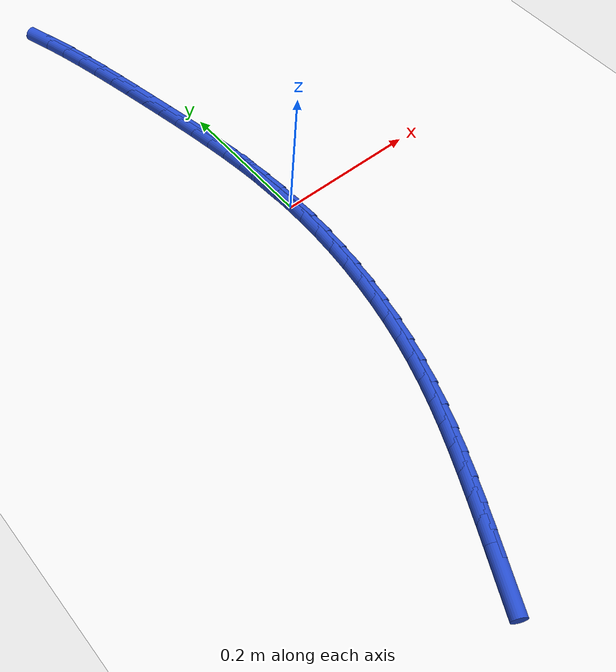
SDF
<sdf version="1.6">
 <world name="default">
  <model name="ground_plane">
   <static>1</static>
   <link name="link">
    <collision name="collision">
     <geometry><plane><normal>0 0 1</normal><size>100 100</size></plane></geometry>
     <surface><friction><ode><mu>100</mu><mu2>50</mu2></ode></friction></surface>
    </collision>
    <visual name="visual">
     <cast_shadows>0</cast_shadows>
     <geometry><plane><normal>0 0 1</normal><size>100 100</size></plane></geometry>
     <material>
      <script><uri>file://media/materials/scripts/gazebo.material</uri><name>Gazebo/WhiteGlow</name></script>
     </material>
    </visual>
   </link>
  </model>
  <model name="line">
   <link name="link_0">
    <pose>-1.9949319973733282e-17 5.551115123125783e-17 0.01 0 1.57 -1.5289653326839188</pose>
    <collision name="collision">
     <geometry><cylinder><radius>0.01</radius><length>0.08</length></cylinder></geometry>
    </collision>
    <visual name="visual">
     <material>
      <script><name>Gazebo/Blue</name><uri>file://media/materials/scripts/gazebo.material</uri></script>
     </material>
     <geometry><cylinder><radius>0.01</radius><length>0.08</length></cylinder></geometry>
    </visual>
   </link>
   <link name="link_1">
    <pose>-0.0012793142125460944 0.030565085952302996 0.01 0 1.57 -1.4955938856073712</pose>
    <collision name="collision">
     <geometry><cylinder><radius>0.01</radius><length>0.08</length></cylinder></geometry>
    </collision>
    <visual name="visual">
     <material>
      <script><name>Gazebo/Blue</name><uri>file://media/materials/scripts/gazebo.material</uri></script>
     </material>
     <geometry><cylinder><radius>0.01</radius><length>0.08</length></cylinder></geometry>
    </visual>
   </link>
   <link name="link_2">
    <pose>-0.003569841791417455 0.06096580112256882 0.01 0 1.57 -1.4657438496458983</pose>
    <collision name="collision">
     <geometry><cylinder><radius>0.01</radius><length>0.08</length></cylinder></geometry>
    </collision>
    <visual name="visual">
     <material>
      <script><name>Gazebo/Blue</name><uri>file://media/materials/scripts/gazebo.material</uri></script>
     </material>
     <geometry><cylinder><radius>0.01</radius><length>0.08</length></cylinder></geometry>
    </visual>
   </link>
   <link name="link_3">
    <pose>-0.006763926267108752 0.09125852635424452 0.01 0 1.57 -1.4396149479589366</pose>
    <collision name="collision">
     <geometry><cylinder><radius>0.01</radius><length>0.08</length></cylinder></geometry>
    </collision>
    <visual name="visual">
     <material>
      <script><name>Gazebo/Blue</name><uri>file://media/materials/scripts/gazebo.material</uri></script>
     </material>
     <geometry><cylinder><radius>0.01</radius><length>0.08</length></cylinder></geometry>
    </visual>
   </link>
   <link name="link_4">
    <pose>-0.010753911170114629 0.12149964249077708 0.01 0 1.57 -1.417339156078249</pose>
    <collision name="collision">
     <geometry><cylinder><radius>0.01</radius><length>0.08</length></cylinder></geometry>
    </collision>
    <visual name="visual">
     <material>
      <script><name>Gazebo/Blue</name><uri>file://media/materials/scripts/gazebo.material</uri></script>
     </material>
     <geometry><cylinder><radius>0.01</radius><length>0.08</length></cylinder></geometry>
    </visual>
   </link>
   <link name="link_5">
    <pose>-0.015432140030929735 0.15174553037561347 0.01 0 1.57 -1.3989890061283723</pose>
    <collision name="collision">
     <geometry><cylinder><radius>0.01</radius><length>0.08</length></cylinder></geometry>
    </collision>
    <visual name="visual">
     <material>
      <script><name>Gazebo/Blue</name><uri>file://media/materials/scripts/gazebo.material</uri></script>
     </material>
     <geometry><cylinder><radius>0.01</radius><length>0.08</length></cylinder></geometry>
    </visual>
   </link>
   <link name="link_6">
    <pose>-0.02069095638004872 0.18205257085220064 0.01 0 1.57 -1.3845867775588265</pose>
    <collision name="collision">
     <geometry><cylinder><radius>0.01</radius><length>0.08</length></cylinder></geometry>
    </collision>
    <visual name="visual">
     <material>
      <script><name>Gazebo/Blue</name><uri>file://media/materials/scripts/gazebo.material</uri></script>
     </material>
     <geometry><cylinder><radius>0.01</radius><length>0.08</length></cylinder></geometry>
    </visual>
   </link>
   <link name="link_7">
    <pose>-0.02642270374796623 0.21247714476398566 0.01 0 1.57 -1.3741134388161529</pose>
    <collision name="collision">
     <geometry><cylinder><radius>0.01</radius><length>0.08</length></cylinder></geometry>
    </collision>
    <visual name="visual">
     <material>
      <script><name>Gazebo/Blue</name><uri>file://media/materials/scripts/gazebo.material</uri></script>
     </material>
     <geometry><cylinder><radius>0.01</radius><length>0.08</length></cylinder></geometry>
    </visual>
   </link>
   <link name="link_8">
    <pose>-0.03251972566517692 0.24307563295441545 0.01 0 1.57 -1.3675165659097024</pose>
    <collision name="collision">
     <geometry><cylinder><radius>0.01</radius><length>0.08</length></cylinder></geometry>
    </collision>
    <visual name="visual">
     <material>
      <script><name>Gazebo/Blue</name><uri>file://media/materials/scripts/gazebo.material</uri></script>
     </material>
     <geometry><cylinder><radius>0.01</radius><length>0.08</length></cylinder></geometry>
    </visual>
   </link>
   <link name="link_9">
    <pose>-0.03887436566217543 0.27390441626693696 0.01 0 1.57 -1.36413426950641</pose>
    <collision name="collision">
     <geometry><cylinder><radius>0.01</radius><length>0.08</length></cylinder></geometry>
    </collision>
    <visual name="visual">
     <material>
      <script><name>Gazebo/Blue</name><uri>file://media/materials/scripts/gazebo.material</uri></script>
     </material>
     <geometry><cylinder><radius>0.01</radius><length>0.08</length></cylinder></geometry>
    </visual>
   </link>
   <link name="link_10">
    <pose>-0.045395032133502045 0.30500625630234757 0.01 0 1.57 -1.35880597664031</pose>
    <collision name="collision">
     <geometry><cylinder><radius>0.01</radius><length>0.08</length></cylinder></geometry>
    </collision>
    <visual name="visual">
     <material>
      <script><name>Gazebo/Blue</name><uri>file://media/materials/scripts/gazebo.material</uri></script>
     </material>
     <geometry><cylinder><radius>0.01</radius><length>0.08</length></cylinder></geometry>
    </visual>
   </link>
   <link name="link_11">
    <pose>-0.05213114120278557 0.33630437312829115 0.01 0 1.57 -1.348903417357576</pose>
    <collision name="collision">
     <geometry><cylinder><radius>0.01</radius><length>0.08</length></cylinder></geometry>
    </collision>
    <visual name="visual">
     <material>
      <script><name>Gazebo/Blue</name><uri>file://media/materials/scripts/gazebo.material</uri></script>
     </material>
     <geometry><cylinder><radius>0.01</radius><length>0.08</length></cylinder></geometry>
    </visual>
   </link>
   <link name="link_12">
    <pose>-0.05920521788855795 0.3676600075901353 0.01 0 1.57 -1.3343608256101234</pose>
    <collision name="collision">
     <geometry><cylinder><radius>0.01</radius><length>0.08</length></cylinder></geometry>
    </collision>
    <visual name="visual">
     <material>
      <script><name>Gazebo/Blue</name><uri>file://media/materials/scripts/gazebo.material</uri></script>
     </material>
     <geometry><cylinder><radius>0.01</radius><length>0.08</length></cylinder></geometry>
    </visual>
   </link>
   <link name="link_13">
    <pose>-0.06674040664647819 0.39893387539562275 0.01 0 1.57 -1.3150498745148993</pose>
    <collision name="collision">
     <geometry><cylinder><radius>0.01</radius><length>0.08</length></cylinder></geometry>
    </collision>
    <visual name="visual">
     <material>
      <script><name>Gazebo/Blue</name><uri>file://media/materials/scripts/gazebo.material</uri></script>
     </material>
     <geometry><cylinder><radius>0.01</radius><length>0.08</length></cylinder></geometry>
    </visual>
   </link>
   <link name="link_14">
    <pose>-0.07485985193220533 0.4299866922524965 0.01 0 1.57 -1.290763513359447</pose>
    <collision name="collision">
     <geometry><cylinder><radius>0.01</radius><length>0.08</length></cylinder></geometry>
    </collision>
    <visual name="visual">
     <material>
      <script><name>Gazebo/Blue</name><uri>file://media/materials/scripts/gazebo.material</uri></script>
     </material>
     <geometry><cylinder><radius>0.01</radius><length>0.08</length></cylinder></geometry>
    </visual>
   </link>
   <link name="link_15">
    <pose>-0.08368669820139843 0.4606791738684998 0.01 0 1.57 -1.2612233022906032</pose>
    <collision name="collision">
     <geometry><cylinder><radius>0.01</radius><length>0.08</length></cylinder></geometry>
    </collision>
    <visual name="visual">
     <material>
      <script><name>Gazebo/Blue</name><uri>file://media/materials/scripts/gazebo.material</uri></script>
     </material>
     <geometry><cylinder><radius>0.01</radius><length>0.08</length></cylinder></geometry>
    </visual>
   </link>
   <link name="link_202">
    <pose>-0.15143919264915207 -0.5262326863307046 0.01 0 1.57 1.0986833469972588</pose>
    <collision name="collision">
     <geometry><cylinder><radius>0.01</radius><length>0.08</length></cylinder></geometry>
    </collision>
    <visual name="visual">
     <material>
      <script><name>Gazebo/Blue</name><uri>file://media/materials/scripts/gazebo.material</uri></script>
     </material>
     <geometry><cylinder><radius>0.01</radius><length>0.08</length></cylinder></geometry>
    </visual>
   </link>
   <link name="link_203">
    <pose>-0.1370367924164582 -0.49802735895302946 0.01 0 1.57 1.0991225513004055</pose>
    <collision name="collision">
     <geometry><cylinder><radius>0.01</radius><length>0.08</length></cylinder></geometry>
    </collision>
    <visual name="visual">
     <material>
      <script><name>Gazebo/Blue</name><uri>file://media/materials/scripts/gazebo.material</uri></script>
     </material>
     <geometry><cylinder><radius>0.01</radius><length>0.08</length></cylinder></geometry>
    </visual>
   </link>
   <link name="link_204">
    <pose>-0.12281866076075154 -0.47015267844591535 0.01 0 1.57 1.1046252581929195</pose>
    <collision name="collision">
     <geometry><cylinder><radius>0.01</radius><length>0.08</length></cylinder></geometry>
    </collision>
    <visual name="visual">
     <material>
      <script><name>Gazebo/Blue</name><uri>file://media/materials/scripts/gazebo.material</uri></script>
     </material>
     <geometry><cylinder><radius>0.01</radius><length>0.08</length></cylinder></geometry>
    </visual>
   </link>
   <link name="link_205">
    <pose>-0.1089003734600001 -0.44249083354720914 0.01 0 1.57 1.1153232845507075</pose>
    <collision name="collision">
     <geometry><cylinder><radius>0.01</radius><length>0.08</length></cylinder></geometry>
    </collision>
    <visual name="visual">
     <material>
      <script><name>Gazebo/Blue</name><uri>file://media/materials/scripts/gazebo.material</uri></script>
     </material>
     <geometry><cylinder><radius>0.01</radius><length>0.08</length></cylinder></geometry>
    </visual>
   </link>
   <link name="link_206">
    <pose>-0.09539750629217217 -0.41492401299475834 0.01 0 1.57 1.1312942623996036</pose>
    <collision name="collision">
     <geometry><cylinder><radius>0.01</radius><length>0.08</length></cylinder></geometry>
    </collision>
    <visual name="visual">
     <material>
      <script><name>Gazebo/Blue</name><uri>file://media/materials/scripts/gazebo.material</uri></script>
     </material>
     <geometry><cylinder><radius>0.01</radius><length>0.08</length></cylinder></geometry>
    </visual>
   </link>
   <link name="link_207">
    <pose>-0.08242563503523574 -0.38733440552640946 0.01 0 1.57 1.1525489990660804</pose>
    <collision name="collision">
     <geometry><cylinder><radius>0.01</radius><length>0.08</length></cylinder></geometry>
    </collision>
    <visual name="visual">
     <material>
      <script><name>Gazebo/Blue</name><uri>file://media/materials/scripts/gazebo.material</uri></script>
     </material>
     <geometry><cylinder><radius>0.01</radius><length>0.08</length></cylinder></geometry>
    </visual>
   </link>
   <link name="link_208">
    <pose>-0.07010033546715977 -0.35960419988001147 0.01 0 1.57 1.1790158990821056</pose>
    <collision name="collision">
     <geometry><cylinder><radius>0.01</radius><length>0.08</length></cylinder></geometry>
    </collision>
    <visual name="visual">
     <material>
      <script><name>Gazebo/Blue</name><uri>file://media/materials/scripts/gazebo.material</uri></script>
     </material>
     <geometry><cylinder><radius>0.01</radius><length>0.08</length></cylinder></geometry>
    </visual>
   </link>
   <link name="link_209">
    <pose>-0.058537183365912196 -0.33161558479341097 0.01 0 1.57 1.2105238774603926</pose>
    <collision name="collision">
     <geometry><cylinder><radius>0.01</radius><length>0.08</length></cylinder></geometry>
    </collision>
    <visual name="visual">
     <material>
      <script><name>Gazebo/Blue</name><uri>file://media/materials/scripts/gazebo.material</uri></script>
     </material>
     <geometry><cylinder><radius>0.01</radius><length>0.08</length></cylinder></geometry>
    </visual>
   </link>
   <link name="link_210">
    <pose>-0.04785175450946137 -0.3032507490044554 0.01 0 1.57 1.246771202347421</pose>
    <collision name="collision">
     <geometry><cylinder><radius>0.01</radius><length>0.08</length></cylinder></geometry>
    </collision>
    <visual name="visual">
     <material>
      <script><name>Gazebo/Blue</name><uri>file://media/materials/scripts/gazebo.material</uri></script>
     </material>
     <geometry><cylinder><radius>0.01</radius><length>0.08</length></cylinder></geometry>
    </visual>
   </link>
   <link name="link_211">
    <pose>-0.038159325851764736 -0.27439243031912885 0.01 0 1.57 1.2856494635332887</pose>
    <collision name="collision">
     <geometry><cylinder><radius>0.01</radius><length>0.08</length></cylinder></geometry>
    </collision>
    <visual name="visual">
     <material>
      <script><name>Gazebo/Blue</name><uri>file://media/materials/scripts/gazebo.material</uri></script>
     </material>
     <geometry><cylinder><radius>0.01</radius><length>0.08</length></cylinder></geometry>
    </visual>
   </link>
   <link name="link_212">
    <pose>-0.02953990572588388 -0.24498817015775076 0.01 0 1.57 1.3237708562069093</pose>
    <collision name="collision">
     <geometry><cylinder><radius>0.01</radius><length>0.08</length></cylinder></geometry>
    </collision>
    <visual name="visual">
     <material>
      <script><name>Gazebo/Blue</name><uri>file://media/materials/scripts/gazebo.material</uri></script>
     </material>
     <geometry><cylinder><radius>0.01</radius><length>0.08</length></cylinder></geometry>
    </visual>
   </link>
   <link name="link_213">
    <pose>-0.022005478619804796 -0.2151104989793415 0.01 0 1.57 1.3609673209899675</pose>
    <collision name="collision">
     <geometry><cylinder><radius>0.01</radius><length>0.08</length></cylinder></geometry>
    </collision>
    <visual name="visual">
     <material>
      <script><name>Gazebo/Blue</name><uri>file://media/materials/scripts/gazebo.material</uri></script>
     </material>
     <geometry><cylinder><radius>0.01</radius><length>0.08</length></cylinder></geometry>
    </visual>
   </link>
   <link name="link_214">
    <pose>-0.01556027913553091 -0.18484618711421488 0.01 0 1.57 1.3974552539474179</pose>
    <collision name="collision">
     <geometry><cylinder><radius>0.01</radius><length>0.08</length></cylinder></geometry>
    </collision>
    <visual name="visual">
     <material>
      <script><name>Gazebo/Blue</name><uri>file://media/materials/scripts/gazebo.material</uri></script>
     </material>
     <geometry><cylinder><radius>0.01</radius><length>0.08</length></cylinder></geometry>
    </visual>
   </link>
   <link name="link_215">
    <pose>-0.010208541875065837 -0.15428200489268537 0.01 0 1.57 1.4334464500789128</pose>
    <collision name="collision">
     <geometry><cylinder><radius>0.01</radius><length>0.08</length></cylinder></geometry>
    </collision>
    <visual name="visual">
     <material>
      <script><name>Gazebo/Blue</name><uri>file://media/materials/scripts/gazebo.material</uri></script>
     </material>
     <geometry><cylinder><radius>0.01</radius><length>0.08</length></cylinder></geometry>
    </visual>
   </link>
   <link name="link_216">
    <pose>-0.005954501440413129 -0.12350472264506665 0.01 0 1.57 1.4691497735902879</pose>
    <collision name="collision">
     <geometry><cylinder><radius>0.01</radius><length>0.08</length></cylinder></geometry>
    </collision>
    <visual name="visual">
     <material>
      <script><name>Gazebo/Blue</name><uri>file://media/materials/scripts/gazebo.material</uri></script>
     </material>
     <geometry><cylinder><radius>0.01</radius><length>0.08</length></cylinder></geometry>
    </visual>
   </link>
   <link name="link_217">
    <pose>-0.002802392433576634 -0.09260111070167483 0.01 0 1.57 1.5047730582644752</pose>
    <collision name="collision">
     <geometry><cylinder><radius>0.01</radius><length>0.08</length></cylinder></geometry>
    </collision>
    <visual name="visual">
     <material>
      <script><name>Gazebo/Blue</name><uri>file://media/materials/scripts/gazebo.material</uri></script>
     </material>
     <geometry><cylinder><radius>0.01</radius><length>0.08</length></cylinder></geometry>
    </visual>
   </link>
   <link name="link_218">
    <pose>-0.0007564494565598587 -0.06165793939282359 0.01 0 1.57 1.540525166486243</pose>
    <collision name="collision">
     <geometry><cylinder><radius>0.01</radius><length>0.08</length></cylinder></geometry>
    </collision>
    <visual name="visual">
     <material>
      <script><name>Gazebo/Blue</name><uri>file://media/materials/scripts/gazebo.material</uri></script>
     </material>
     <geometry><cylinder><radius>0.01</radius><length>0.08</length></cylinder></geometry>
    </visual>
   </link>
   <link name="link_219">
    <pose>0.00017909288863355612 -0.030761979048827423 0.01 0 1.57 -1.564974501580912</pose>
    <collision name="collision">
     <geometry><cylinder><radius>0.01</radius><length>0.08</length></cylinder></geometry>
    </collision>
    <visual name="visual">
     <material>
      <script><name>Gazebo/Blue</name><uri>file://media/materials/scripts/gazebo.material</uri></script>
     </material>
     <geometry><cylinder><radius>0.01</radius><length>0.08</length></cylinder></geometry>
    </visual>
   </link>
   <link name="link_220">
    <pose>-3.469446951953614e-17 -9.020562075079397e-17 0.01 0 1.57 -1.52832317671523</pose>
    <collision name="collision">
     <geometry><cylinder><radius>0.01</radius><length>0.08</length></cylinder></geometry>
    </collision>
    <visual name="visual">
     <material>
      <script><name>Gazebo/Blue</name><uri>file://media/materials/scripts/gazebo.material</uri></script>
     </material>
     <geometry><cylinder><radius>0.01</radius><length>0.08</length></cylinder></geometry>
    </visual>
   </link>
   <link name="link_221">
    <pose>-0.001297962724464214 0.03054122742334168 0.01 0 1.57 -1.4908884269130684</pose>
    <collision name="collision">
     <geometry><cylinder><radius>0.01</radius><length>0.08</length></cylinder></geometry>
    </collision>
    <visual name="visual">
     <material>
      <script><name>Gazebo/Blue</name><uri>file://media/materials/scripts/gazebo.material</uri></script>
     </material>
     <geometry><cylinder><radius>0.01</radius><length>0.08</length></cylinder></geometry>
    </visual>
   </link>
   <link name="link_222">
    <pose>-0.0037190298867627435 0.06077493289088635 0.01 0 1.57 -1.5096790541564962</pose>
    <collision name="collision">
     <geometry><cylinder><radius>0.01</radius><length>0.08</length></cylinder></geometry>
    </collision>
    <visual name="visual">
     <material>
      <script><name>Gazebo/Blue</name><uri>file://media/materials/scripts/gazebo.material</uri></script>
     </material>
     <geometry><cylinder><radius>0.01</radius><length>0.08</length></cylinder></geometry>
    </visual>
   </link>
  </model>
 </world>
</sdf>
